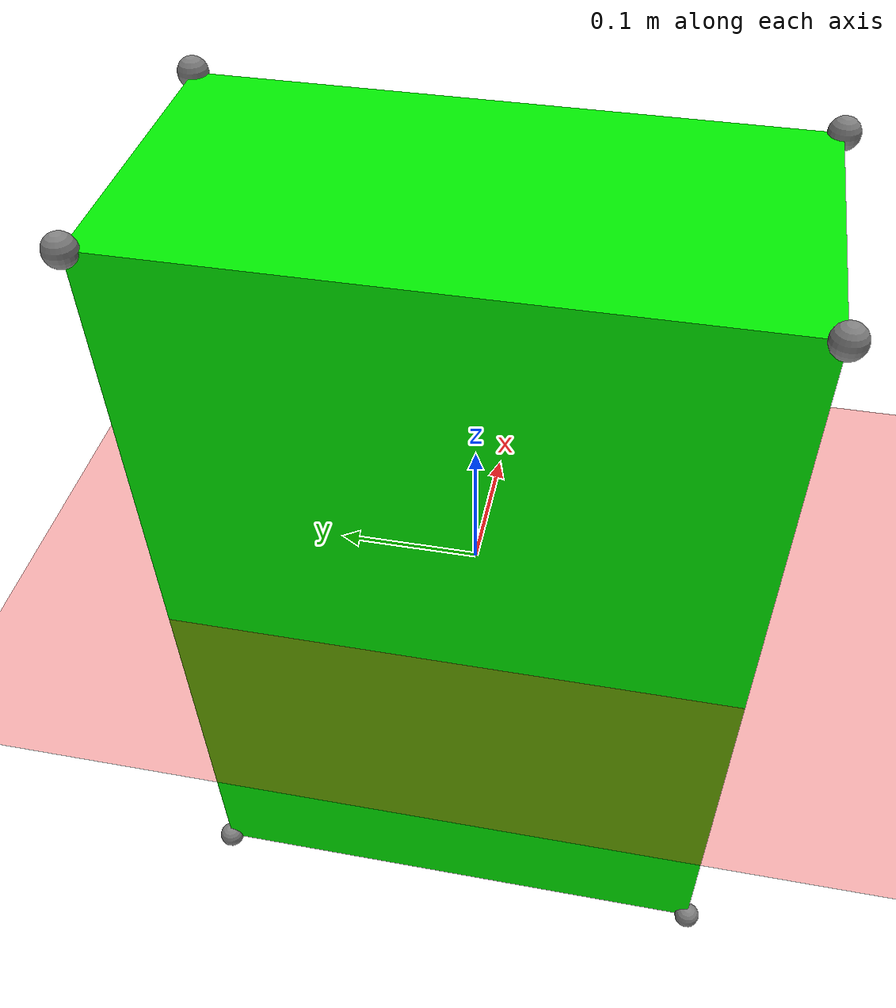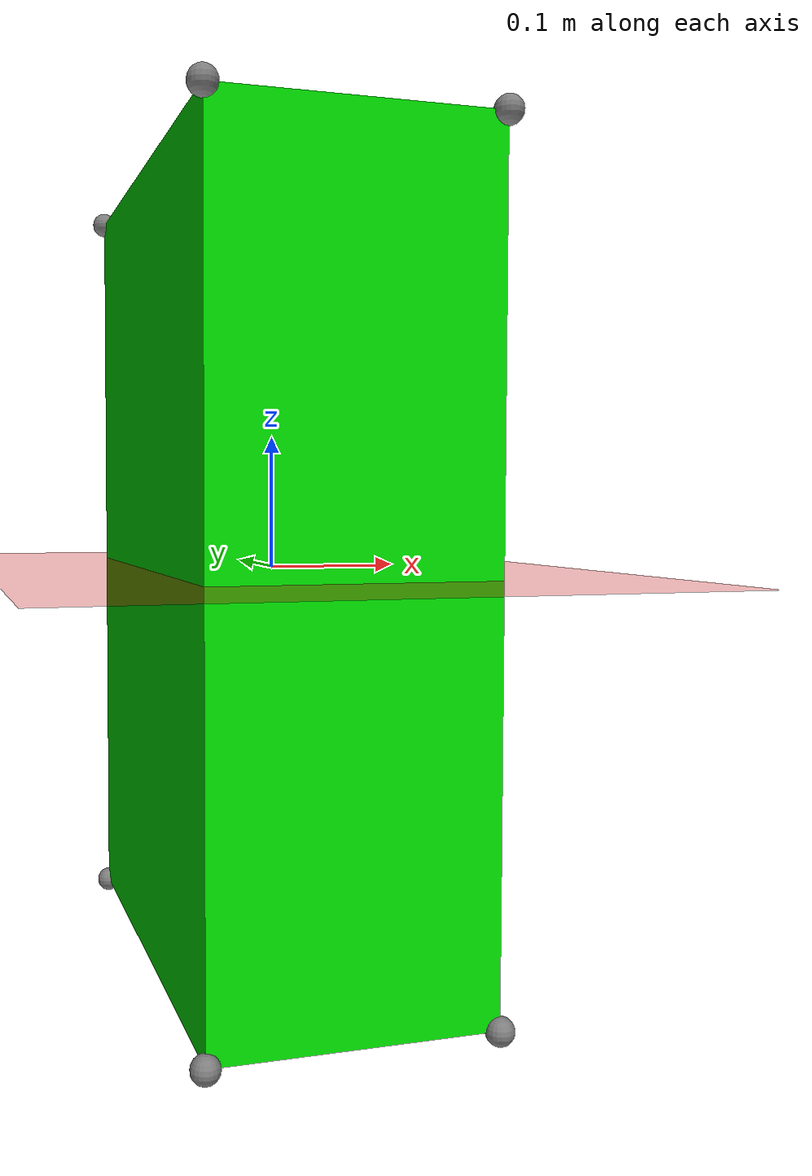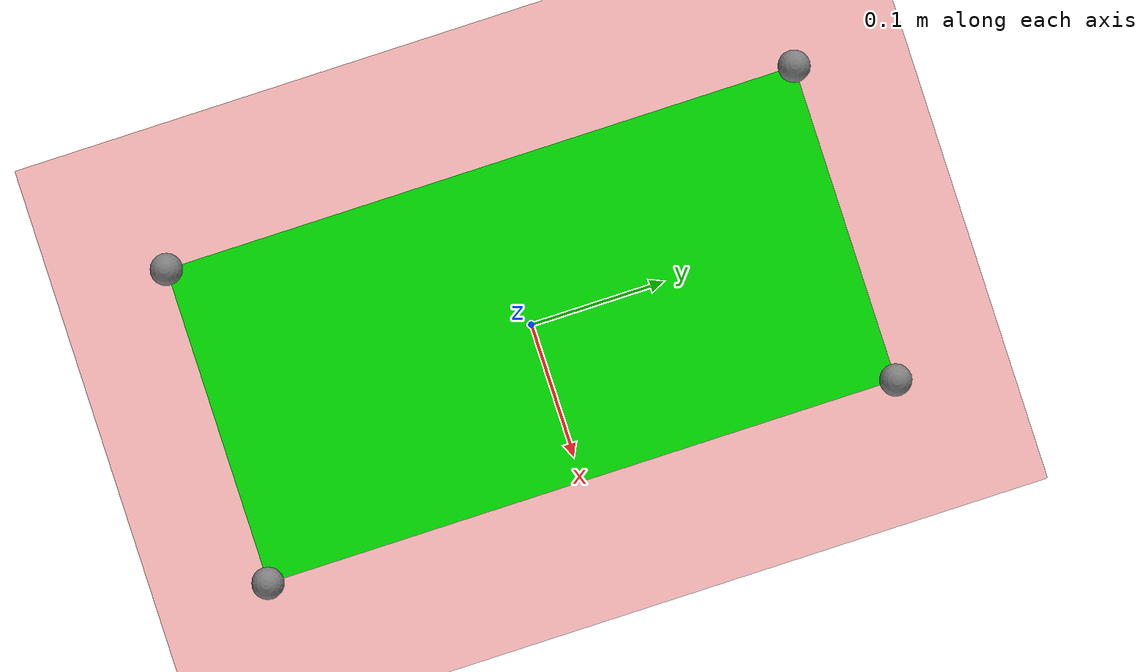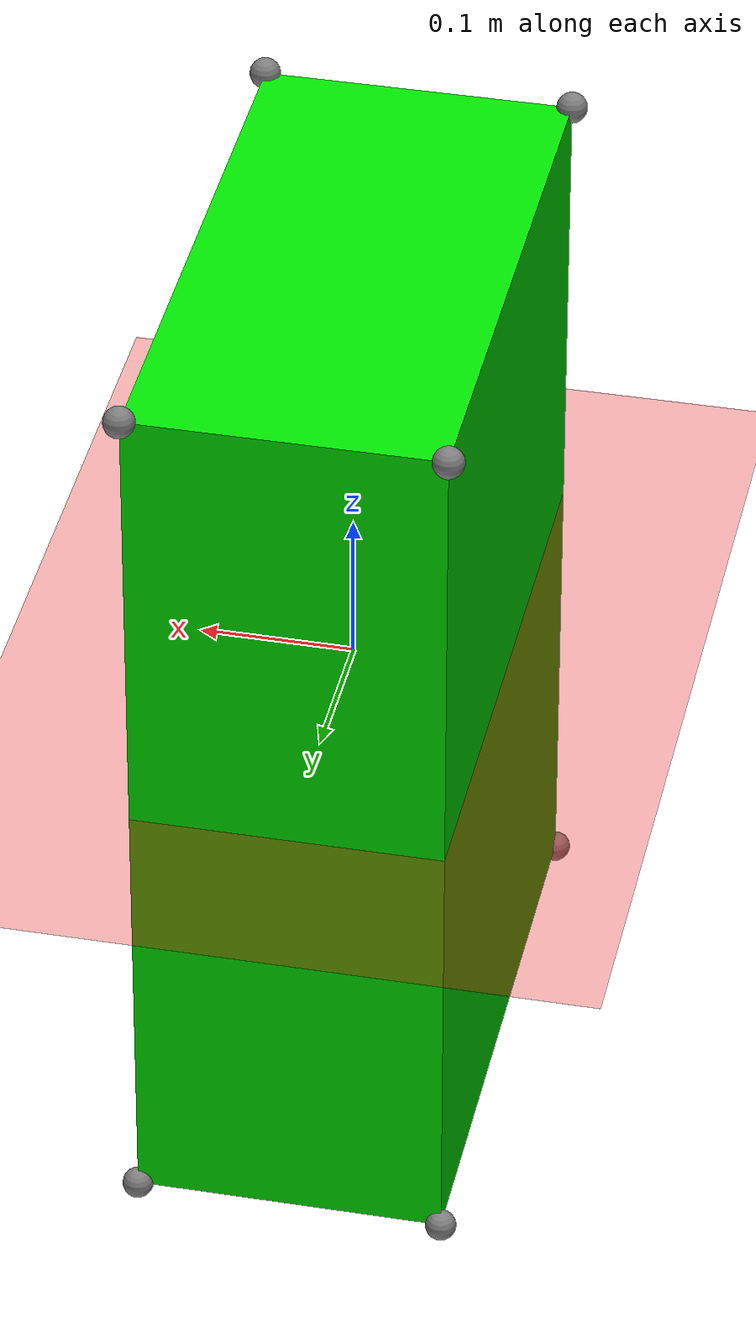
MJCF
<mujoco>
  <option timestep="0.01"> </option>

  <custom>
    <numeric name="estimator_configuration_length" data="32" />
  </custom>

  <worldbody>
    <light diffuse=".5 .5 .5" pos="0 0 3" dir="0 0 -1"/>
    <camera pos="0.000 -2.655 2.655" xyaxes="1.000 -0.000 0.000 0.000 0.707 0.707"/>
    <geom type="plane" size="1 1 0.1" rgba=".9 0 0 1"/>
    <body name="root" pos="0 0 0">
      <joint type="free"/>
      <geom type="box" size=".1 .2 .3" rgba="0 .9 0 1"/>
      <site name="corner1" type="sphere" size="0.01" pos=".1 .2 .3"/>
      <site name="corner2" type="sphere" size="0.01" pos="-.1 .2 .3"/>
      <site name="corner3" type="sphere" size="0.01" pos=".1 -.2 .3"/>
      <site name="corner4" type="sphere" size="0.01" pos=".1 .2 -.3"/>
      <site name="corner5" type="sphere" size="0.01" pos="-.1 -.2 .3"/>
      <site name="corner6" type="sphere" size="0.01" pos=".1 -.2 -.3"/>
      <site name="corner7" type="sphere" size="0.01" pos="-.1 .2 -.3"/>
      <site name="corner8" type="sphere" size="0.01" pos="-.1 -.2 -.3"/>
    </body>
  </worldbody>

  <sensor>
    <!-- corner positions -->
    <framepos name="corner1" objtype="site" objname="corner1"/>
    <framepos name="corner2" objtype="site" objname="corner2"/>
    <framepos name="corner3" objtype="site" objname="corner3"/>
    <framepos name="corner4" objtype="site" objname="corner4"/>
    <framepos name="corner5" objtype="site" objname="corner5"/>
    <framepos name="corner6" objtype="site" objname="corner6"/>
    <framepos name="corner7" objtype="site" objname="corner7"/>
    <framepos name="corner8" objtype="site" objname="corner8"/>
  </sensor>
</mujoco>
